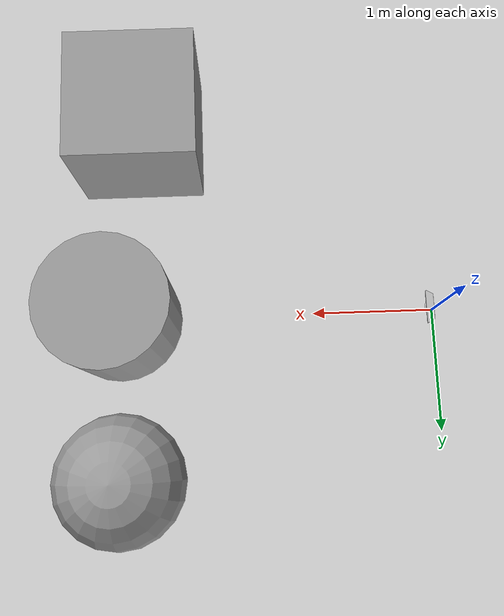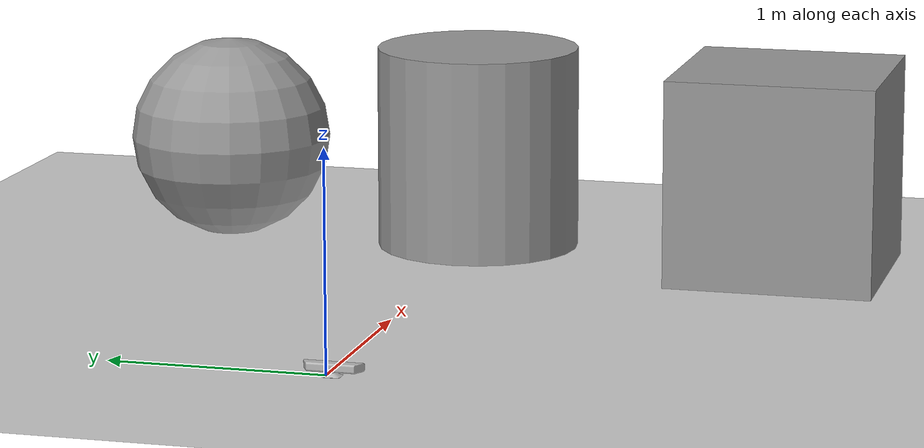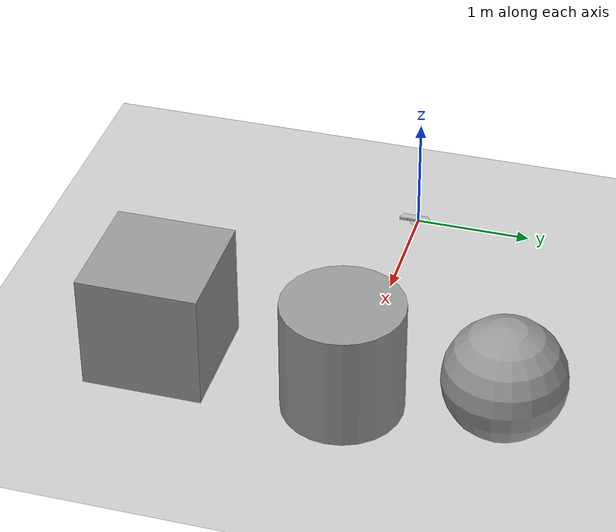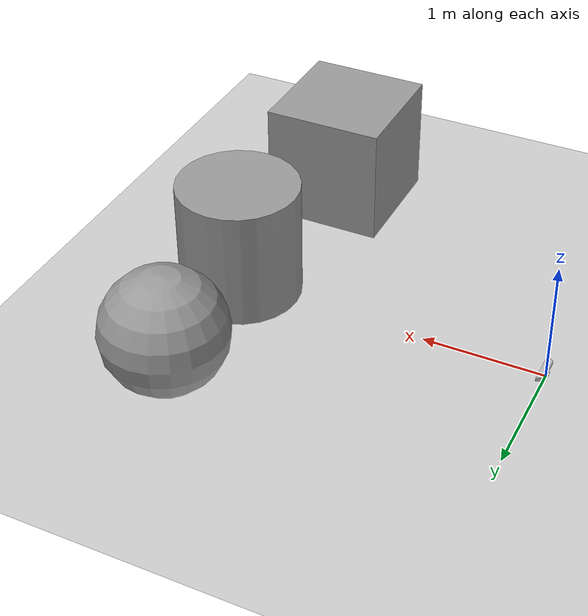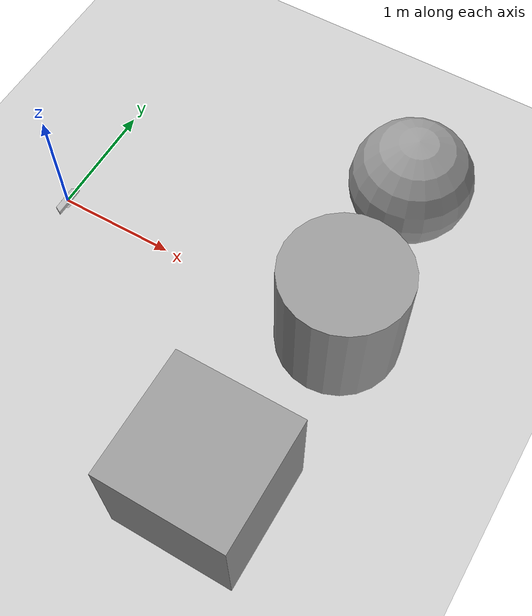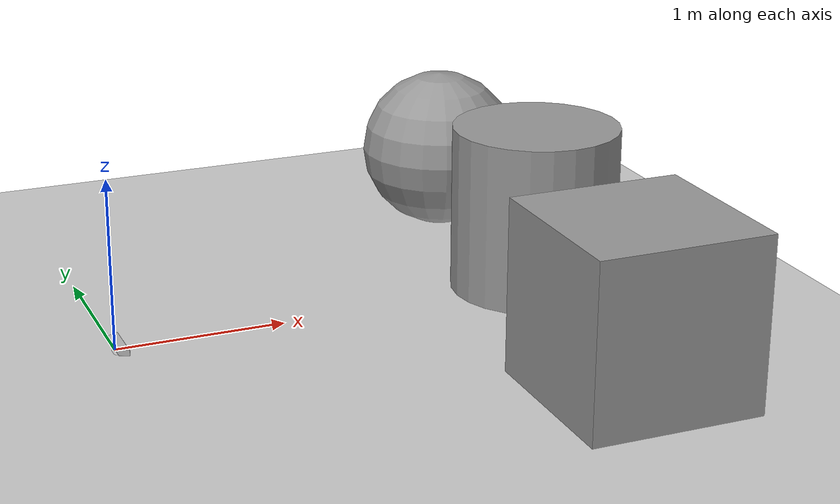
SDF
<sdf version="1.6">
 <world name="default">
  <light name="sun" type="directional">
   <pose>0 0 10 0 -0 0</pose>
   <diffuse>0.8 0.8 0.8 1</diffuse>
   <specular>0.2 0.2 0.2 1</specular>
   <attenuation>
    <range>1000</range>
    <constant>0.9</constant>
    <linear>0.01</linear>
    <quadratic>0.001</quadratic>
   </attenuation>
   <direction>-0.5 0.1 -0.9</direction>
  </light>
  <model name="ground_plane">
   <static>1</static>
   <link name="link">
    <collision name="collision">
     <geometry><plane><normal>0 0 1</normal><size>100 100</size></plane></geometry>
     <surface>
      <contact><collide_bitmask>65535</collide_bitmask></contact>
      <friction><ode><mu>100</mu><mu2>50</mu2></ode></friction>
     </surface>
    </collision>
    <visual name="visual">
     <cast_shadows>0</cast_shadows>
     <geometry><plane><normal>0 0 1</normal><size>100 100</size></plane></geometry>
     <material>
      <script><uri>file://media/materials/scripts/gazebo.material</uri><name>Gazebo/Grey</name></script>
     </material>
    </visual>
   </link>
  </model>
  <gravity>0 0 -9.8</gravity>
  <magnetic_field>6e-06 2.3e-05 -4.2e-05</magnetic_field>
  <atmosphere type="adiabatic"/>
  <physics name="default_physics" default="0" type="ode">
   <max_step_size>0.001</max_step_size>
   <real_time_factor>1</real_time_factor>
   <real_time_update_rate>1000</real_time_update_rate>
  </physics>
  <scene><ambient>0.4 0.4 0.4 1</ambient><background>0.7 0.7 0.7 1</background><shadows>1</shadows></scene>
  <spherical_coordinates>
   <surface_model>EARTH_WGS84</surface_model>
   <latitude_deg>0</latitude_deg>
   <longitude_deg>0</longitude_deg>
   <elevation>0</elevation>
   <heading_deg>0</heading_deg>
  </spherical_coordinates>
  <model name="kinect_ros">
   <pose>0.048308 -0.021638 0.036 0 -0 0</pose>
   <static>1</static>
   <link name="link">
    <inertial><mass>0.1</mass></inertial>
    <collision name="collision"><geometry><box><size>0.073 0.276 0.072</size></box></geometry></collision>
    <visual name="visual"><geometry><mesh><uri>model://kinect/meshes/kinect.dae</uri></mesh></geometry></visual>
    <sensor name="camera" type="depth">
     <update_rate>20</update_rate>
     <camera name="__default__">
      <horizontal_fov>1.0472</horizontal_fov>
      <image><width>640</width><height>480</height><format>R8G8B8</format></image>
      <noise><type>gaussian</type><mean>2.5</mean><stddev>0.9</stddev></noise>
      <clip><near>0.05</near><far>3</far></clip>
     </camera>
     <plugin name="camera_plugin" filename="libgazebo_ros_openni_kinect.so">
      <baseline>0.2</baseline>
      <alwaysOn>1</alwaysOn>
      <updateRate>0.0</updateRate>
      <cameraName>camera_ir</cameraName>
      <imageTopicName>/camera/color/image_raw</imageTopicName>
      <cameraInfoTopicName>/camera/color/camera_info</cameraInfoTopicName>
      <depthImageTopciName>/camera/depth/image_raw</depthImageTopciName>
      <depthImageCameraInfoName>/camera/depth/camera_info</depthImageCameraInfoName>
      <pointCloudTopicName>/camera/depth/points</pointCloudTopicName>
      <frameName>camera_link</frameName>
      <pointCloudCutoff>0.5</pointCloudCutoff>
      <pointCloudCutoffMax>3.0</pointCloudCutoffMax>
      <distortionK1>0</distortionK1>
      <distortionK2>0</distortionK2>
      <distortionK3>0</distortionK3>
      <distortionT1>0</distortionT1>
      <distortionT2>0</distortionT2>
      <cxPrime>0</cxPrime>
      <cx>0</cx>
      <cy>0</cy>
      <focalLength>0</focalLength>
      <hackBaseline>0</hackBaseline>
     </plugin>
    </sensor>
   </link>
  </model>
  <model name="unit_box">
   <pose>2.3925 -1.57707 0.499995 0 1e-05 0</pose>
   <link name="link">
    <inertial>
     <mass>1</mass>
     <inertia>
      <ixx>0.166667</ixx>
      <ixy>0</ixy>
      <ixz>0</ixz>
      <iyy>0.166667</iyy>
      <iyz>0</iyz>
      <izz>0.166667</izz>
     </inertia>
    </inertial>
    <collision name="collision"><geometry><box><size>1 1 1</size></box></geometry></collision>
    <visual name="visual">
     <geometry><box><size>1 1 1</size></box></geometry>
     <material>
      <script><name>Gazebo/Grey</name><uri>file://media/materials/scripts/gazebo.material</uri></script>
     </material>
    </visual>
   </link>
  </model>
  <model name="unit_cylinder">
   <pose>2.59552 0.010068 0.499993 -3e-06 -4e-06 -0</pose>
   <link name="link">
    <inertial>
     <mass>1</mass>
     <inertia><ixx>0.145833</ixx><ixy>0</ixy><ixz>0</ixz><iyy>0.145833</iyy><iyz>0</iyz><izz>0.125</izz></inertia>
    </inertial>
    <collision name="collision">
     <geometry><cylinder><radius>0.5</radius><length>1</length></cylinder></geometry>
    </collision>
    <visual name="visual">
     <geometry><cylinder><radius>0.5</radius><length>1</length></cylinder></geometry>
     <material>
      <script><name>Gazebo/Grey</name><uri>file://media/materials/scripts/gazebo.material</uri></script>
     </material>
    </visual>
   </link>
  </model>
  <model name="unit_sphere">
   <pose>2.53464 1.2886 0.5 0 -0 0</pose>
   <link name="link">
    <inertial>
     <mass>1</mass>
     <inertia><ixx>0.1</ixx><ixy>0</ixy><ixz>0</ixz><iyy>0.1</iyy><iyz>0</iyz><izz>0.1</izz></inertia>
    </inertial>
    <collision name="collision"><geometry><sphere><radius>0.5</radius></sphere></geometry></collision>
    <visual name="visual">
     <geometry><sphere><radius>0.5</radius></sphere></geometry>
     <material>
      <script><name>Gazebo/Grey</name><uri>file://media/materials/scripts/gazebo.material</uri></script>
     </material>
    </visual>
   </link>
  </model>
 </world>
</sdf>
